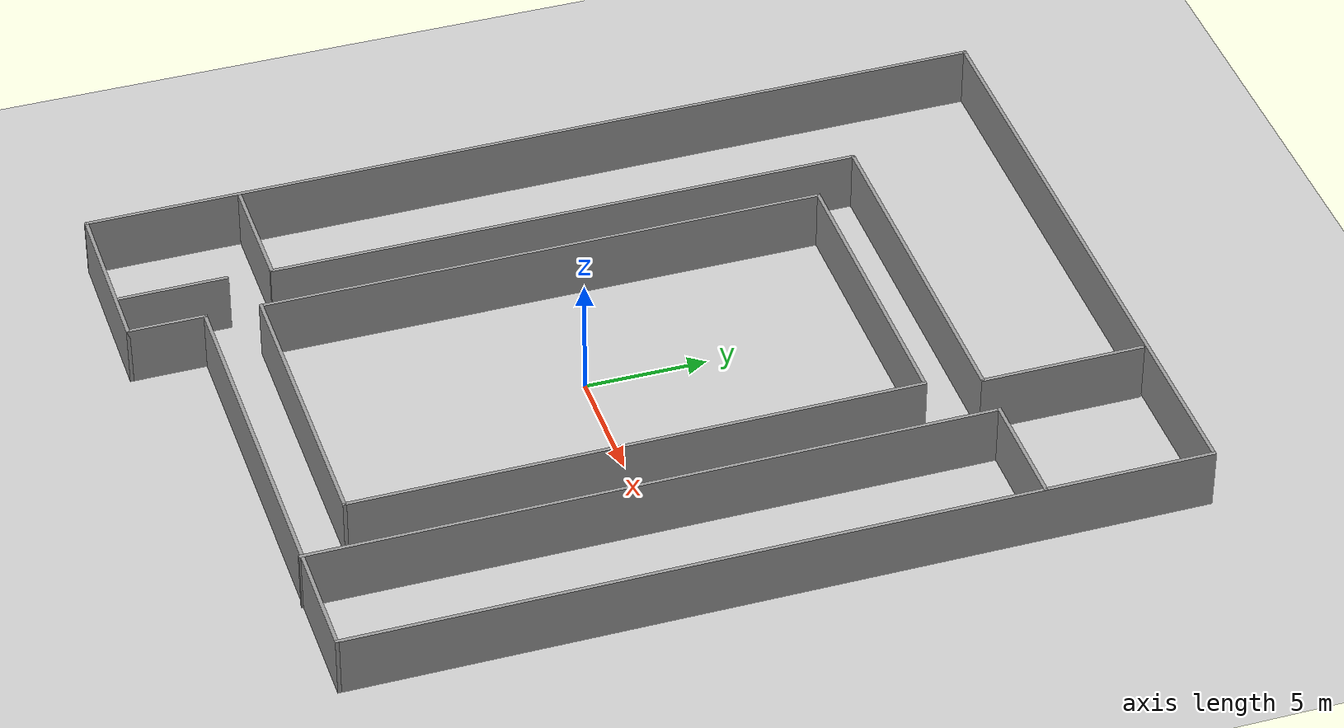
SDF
<sdf version="1.7">
 <world name="default">
  <light name="sun" type="directional">
   <pose>0 0 10 0 -0 0</pose>
   <diffuse>0.8 0.8 0.8 1</diffuse>
   <specular>0.2 0.2 0.2 1</specular>
   <attenuation>
    <range>1000</range>
    <constant>0.9</constant>
    <linear>0.01</linear>
    <quadratic>0.001</quadratic>
   </attenuation>
   <direction>-0.5 0.1 -0.9</direction>
   <spot><inner_angle>0</inner_angle><outer_angle>0</outer_angle><falloff>0</falloff></spot>
  </light>
  <model name="ground_plane">
   <static>1</static>
   <link name="link">
    <collision name="collision">
     <geometry><plane><normal>0 0 1</normal><size>100 100</size></plane></geometry>
     <surface>
      <contact><collide_bitmask>65535</collide_bitmask></contact>
      <friction><ode><mu>100</mu><mu2>50</mu2></ode></friction>
     </surface>
    </collision>
    <visual name="visual">
     <cast_shadows>0</cast_shadows>
     <geometry><plane><normal>0 0 1</normal><size>100 100</size></plane></geometry>
     <material>
      <script><uri>file://media/materials/scripts/gazebo.material</uri><name>Gazebo/Grey</name></script>
     </material>
    </visual>
   </link>
  </model>
  <gravity>0 0 -9.8</gravity>
  <magnetic_field>6e-06 2.3e-05 -4.2e-05</magnetic_field>
  <atmosphere type="adiabatic"/>
  <physics name="default_physics" default="0" type="ode">
   <max_step_size>0.001</max_step_size>
   <real_time_factor>1</real_time_factor>
   <real_time_update_rate>1000</real_time_update_rate>
  </physics>
  <scene><ambient>0.4 0.4 0.4 1</ambient><background>0.7 0.7 0.7 1</background><shadows>1</shadows></scene>
  <audio><device>default</device></audio>
  <spherical_coordinates>
   <surface_model>EARTH_WGS84</surface_model>
   <latitude_deg>0</latitude_deg>
   <longitude_deg>0</longitude_deg>
   <elevation>0</elevation>
   <heading_deg>0</heading_deg>
  </spherical_coordinates>
  <model name="GGB_lab">
   <pose>0.370049 1.8943 0 0 -0 0</pose>
   <link name="Wall_0">
    <collision name="Wall_0_Collision">
     <geometry><box><size>27 0.15 2.5</size></box></geometry>
     <pose>0 0 1.25 0 -0 0</pose>
    </collision>
    <visual name="Wall_0_Visual">
     <pose>0 0 1.25 0 -0 0</pose>
     <geometry><box><size>27 0.15 2.5</size></box></geometry>
     <material>
      <script><uri>file://media/materials/scripts/gazebo.material</uri><name>Gazebo/Grey</name></script>
      <ambient>1 1 1 1</ambient>
     </material>
     <meta><layer>0</layer></meta>
    </visual>
    <pose>0.000153 18.725 0 0 -0 0</pose>
   </link>
   <link name="Wall_1">
    <collision name="Wall_1_Collision">
     <geometry><box><size>34.5 0.15 2.5</size></box></geometry>
     <pose>0 0 1.25 0 -0 0</pose>
    </collision>
    <visual name="Wall_1_Visual">
     <pose>0 0 1.25 0 -0 0</pose>
     <geometry><box><size>34.5 0.15 2.5</size></box></geometry>
     <material>
      <script><uri>file://media/materials/scripts/gazebo.material</uri><name>Gazebo/Grey</name></script>
      <ambient>1 1 1 1</ambient>
     </material>
     <meta><layer>0</layer></meta>
    </visual>
    <pose>13.4251 1.55001 0 0 -0 -1.5708</pose>
   </link>
   <link name="Wall_10">
    <collision name="Wall_10_Collision">
     <geometry><box><size>15 0.15 2.5</size></box></geometry>
     <pose>0 0 1.25 0 -0 0</pose>
    </collision>
    <visual name="Wall_10_Visual">
     <pose>0 0 1.25 0 -0 0</pose>
     <geometry><box><size>15 0.15 2.5</size></box></geometry>
     <material>
      <script><uri>file://media/materials/scripts/gazebo.material</uri><name>Gazebo/Grey</name></script>
      <ambient>1 1 1 1</ambient>
     </material>
     <meta><layer>0</layer></meta>
    </visual>
    <pose>-0.683052 11.9115 0 0 -0 3.14159</pose>
   </link>
   <link name="Wall_11">
    <collision name="Wall_11_Collision">
     <geometry><box><size>24.5 0.15 2.5</size></box></geometry>
     <pose>0 0 1.25 0 -0 0</pose>
    </collision>
    <visual name="Wall_11_Visual">
     <pose>0 0 1.25 0 -0 0</pose>
     <geometry><box><size>24.5 0.15 2.5</size></box></geometry>
     <material>
      <script><uri>file://media/materials/scripts/gazebo.material</uri><name>Gazebo/Grey</name></script>
      <ambient>1 1 1 1</ambient>
     </material>
     <meta><layer>0</layer></meta>
    </visual>
    <pose>-8.10805 -0.263517 0 0 -0 -1.5708</pose>
   </link>
   <link name="Wall_12">
    <collision name="Wall_12_Collision">
     <geometry><box><size>5.25 0.15 2.5</size></box></geometry>
     <pose>0 0 1.25 0 -0 0</pose>
    </collision>
    <visual name="Wall_12_Visual">
     <pose>0 0 1.25 0 -0 0</pose>
     <geometry><box><size>5.25 0.15 2.5</size></box></geometry>
     <material>
      <script><uri>file://media/materials/scripts/gazebo.material</uri><name>Gazebo/Grey</name></script>
      <ambient>1 1 1 1</ambient>
     </material>
     <meta><layer>0</layer></meta>
    </visual>
    <pose>-10.6581 -12.4385 0 0 -0 3.14159</pose>
   </link>
   <link name="Wall_14">
    <collision name="Wall_14_Collision">
     <geometry><box><size>4.5 0.15 2.5</size></box></geometry>
     <pose>0 0 1.25 0 -0 0</pose>
    </collision>
    <visual name="Wall_14_Visual">
     <pose>0 0 1.25 0 -0 0</pose>
     <geometry><box><size>4.5 0.15 2.5</size></box></geometry>
     <material>
      <script><uri>file://media/materials/scripts/gazebo.material</uri><name>Gazebo/Grey</name></script>
      <ambient>1 1 1 1</ambient>
     </material>
     <meta><layer>0</layer></meta>
    </visual>
    <pose>-8.22346 -16.4226 0 0 -0 -1.5708</pose>
   </link>
   <link name="Wall_16">
    <collision name="Wall_16_Collision">
     <geometry><box><size>6.75 0.15 2.5</size></box></geometry>
     <pose>0 0 1.25 0 -0 0</pose>
    </collision>
    <visual name="Wall_16_Visual">
     <pose>0 0 1.25 0 -0 0</pose>
     <geometry><box><size>6.75 0.15 2.5</size></box></geometry>
     <material>
      <script><uri>file://media/materials/scripts/gazebo.material</uri><name>Gazebo/Grey</name></script>
      <ambient>1 1 1 1</ambient>
     </material>
     <meta><layer>0</layer></meta>
    </visual>
    <pose>6.74195 15.2115 0 0 -0 1.5708</pose>
   </link>
   <link name="Wall_18">
    <collision name="Wall_18_Collision">
     <geometry><box><size>12.5 0.15 2.5</size></box></geometry>
     <pose>0 0 1.25 0 -0 0</pose>
    </collision>
    <visual name="Wall_18_Visual">
     <pose>0 0 1.25 0 -0 0</pose>
     <geometry><box><size>12.5 0.15 2.5</size></box></geometry>
     <material>
      <script><uri>file://media/materials/scripts/gazebo.material</uri><name>Gazebo/Grey</name></script>
      <ambient>1 1 1 1</ambient>
     </material>
     <meta><layer>0</layer></meta>
    </visual>
    <pose>0.050346 9.72142 0 0 -0 0</pose>
   </link>
   <link name="Wall_19">
    <collision name="Wall_19_Collision">
     <geometry><box><size>23.25 0.15 2.5</size></box></geometry>
     <pose>0 0 1.25 0 -0 0</pose>
    </collision>
    <visual name="Wall_19_Visual">
     <pose>0 0 1.25 0 -0 0</pose>
     <geometry><box><size>23.25 0.15 2.5</size></box></geometry>
     <material>
      <script><uri>file://media/materials/scripts/gazebo.material</uri><name>Gazebo/Grey</name></script>
      <ambient>1 1 1 1</ambient>
     </material>
     <meta><layer>0</layer></meta>
    </visual>
    <pose>6.22535 -1.82858 0 0 -0 -1.5708</pose>
   </link>
   <link name="Wall_2">
    <collision name="Wall_2_Collision">
     <geometry><box><size>19.75 0.15 2.5</size></box></geometry>
     <pose>0 0 1.25 0 -0 0</pose>
    </collision>
    <visual name="Wall_2_Visual">
     <pose>0 0 1.25 0 -0 0</pose>
     <geometry><box><size>19.75 0.15 2.5</size></box></geometry>
     <material>
      <script><uri>file://media/materials/scripts/gazebo.material</uri><name>Gazebo/Grey</name></script>
      <ambient>1 1 1 1</ambient>
     </material>
     <meta><layer>0</layer></meta>
    </visual>
    <pose>3.62515 -15.625 0 0 -0 3.14159</pose>
   </link>
   <link name="Wall_20">
    <collision name="Wall_20_Collision">
     <geometry><box><size>12.5 0.15 2.5</size></box></geometry>
     <pose>0 0 1.25 0 -0 0</pose>
    </collision>
    <visual name="Wall_20_Visual">
     <pose>0 0 1.25 0 -0 0</pose>
     <geometry><box><size>12.5 0.15 2.5</size></box></geometry>
     <material>
      <script><uri>file://media/materials/scripts/gazebo.material</uri><name>Gazebo/Grey</name></script>
      <ambient>1 1 1 1</ambient>
     </material>
     <meta><layer>0</layer></meta>
    </visual>
    <pose>0.050346 -13.3786 0 0 -0 3.14159</pose>
   </link>
   <link name="Wall_21">
    <collision name="Wall_21_Collision">
     <geometry><box><size>23.25 0.15 2.5</size></box></geometry>
     <pose>0 0 1.25 0 -0 0</pose>
    </collision>
    <visual name="Wall_21_Visual">
     <pose>0 0 1.25 0 -0 0</pose>
     <geometry><box><size>23.25 0.15 2.5</size></box></geometry>
     <material>
      <script><uri>file://media/materials/scripts/gazebo.material</uri><name>Gazebo/Grey</name></script>
      <ambient>1 1 1 1</ambient>
     </material>
     <meta><layer>0</layer></meta>
    </visual>
    <pose>-6.12465 -1.82858 0 0 -0 1.5708</pose>
   </link>
   <link name="Wall_23">
    <collision name="Wall_23_Collision">
     <geometry><box><size>27.75 0.15 2.5</size></box></geometry>
     <pose>0 0 1.25 0 -0 0</pose>
    </collision>
    <visual name="Wall_23_Visual">
     <pose>0 0 1.25 0 -0 0</pose>
     <geometry><box><size>27.75 0.15 2.5</size></box></geometry>
     <material>
      <script><uri>file://media/materials/scripts/gazebo.material</uri><name>Gazebo/Grey</name></script>
      <ambient>1 1 1 1</ambient>
     </material>
     <meta><layer>0</layer></meta>
    </visual>
    <pose>8.55338 -1.88852 0 0 -0 -1.5708</pose>
   </link>
   <link name="Wall_3">
    <collision name="Wall_3_Collision">
     <geometry><box><size>3.25 0.15 2.5</size></box></geometry>
     <pose>0 0 1.25 0 -0 0</pose>
    </collision>
    <visual name="Wall_3_Visual">
     <pose>0 0 1.25 0 -0 0</pose>
     <geometry><box><size>3.25 0.15 2.5</size></box></geometry>
     <material>
      <script><uri>file://media/materials/scripts/gazebo.material</uri><name>Gazebo/Grey</name></script>
      <ambient>1 1 1 1</ambient>
     </material>
     <meta><layer>0</layer></meta>
    </visual>
    <pose>-6.17485 -17.175 0 0 -0 -1.5708</pose>
   </link>
   <link name="Wall_4">
    <collision name="Wall_4_Collision">
     <geometry><box><size>7.25 0.15 2.5</size></box></geometry>
     <pose>0 0 1.25 0 -0 0</pose>
    </collision>
    <visual name="Wall_4_Visual">
     <pose>0 0 1.25 0 -0 0</pose>
     <geometry><box><size>7.25 0.15 2.5</size></box></geometry>
     <material>
      <script><uri>file://media/materials/scripts/gazebo.material</uri><name>Gazebo/Grey</name></script>
      <ambient>1 1 1 1</ambient>
     </material>
     <meta><layer>0</layer></meta>
    </visual>
    <pose>-9.72485 -18.725 0 0 -0 3.14159</pose>
   </link>
   <link name="Wall_5">
    <collision name="Wall_5_Collision">
     <geometry><box><size>37.6003 0.15 2.5</size></box></geometry>
     <pose>0 0 1.25 0 -0 0</pose>
    </collision>
    <visual name="Wall_5_Visual">
     <pose>0 0 1.25 0 -0 0</pose>
     <geometry><box><size>37.6003 0.15 2.5</size></box></geometry>
     <material>
      <script><uri>file://media/materials/scripts/gazebo.material</uri><name>Gazebo/Grey</name></script>
      <ambient>1 1 1 1</ambient>
     </material>
     <meta><layer>0</layer></meta>
    </visual>
    <pose>-13.3498 2e-06 0 0 -0 1.5748</pose>
   </link>
   <link name="Wall_7">
    <collision name="Wall_7_Collision">
     <geometry><box><size>5 0.15 2.5</size></box></geometry>
     <pose>0 0 1.25 0 -0 0</pose>
    </collision>
    <visual name="Wall_7_Visual">
     <pose>0 0 1.25 0 -0 0</pose>
     <geometry><box><size>5 0.15 2.5</size></box></geometry>
     <material>
      <script><uri>file://media/materials/scripts/gazebo.material</uri><name>Gazebo/Grey</name></script>
      <ambient>1 1 1 1</ambient>
     </material>
     <meta><layer>0</layer></meta>
    </visual>
    <pose>10.9784 11.9115 0 0 -0 3.14159</pose>
   </link>
   <static>1</static>
  </model>
  <model name="agent3">
   <link name="link_0">
    <inertial>
     <mass>1</mass>
     <inertia><ixx>0</ixx><ixy>0</ixy><ixz>0</ixz><iyy>0</iyy><iyz>0</iyz><izz>0</izz></inertia>
    </inertial>
    <visual name="visual">
     <geometry><cylinder><radius>0.2</radius><length>0.4</length></cylinder></geometry>
     <material>
      <lighting>1</lighting>
      <script><uri>file://media/materials/scripts/gazebo.material</uri><name>Gazebo/Grey</name></script>
     </material>
    </visual>
    <collision name="collision">
     <geometry><cylinder><radius>0.2</radius><length>0.4</length></cylinder></geometry>
     <surface>
      <friction>
       <ode><mu>0</mu><mu2>1</mu2><fdir1>0 0 0</fdir1><slip1>0</slip1><slip2>0</slip2></ode>
       <torsional>
        <coefficient>1</coefficient>
        <patch_radius>0</patch_radius>
        <surface_radius>0</surface_radius>
        <use_patch_radius>1</use_patch_radius>
        <ode><slip>0</slip></ode>
       </torsional>
      </friction>
      <bounce><restitution_coefficient>0</restitution_coefficient><threshold>1e+06</threshold></bounce>
      <contact>
       <collide_without_contact>0</collide_without_contact>
       <collide_without_contact_bitmask>1</collide_without_contact_bitmask>
       <collide_bitmask>1</collide_bitmask>
       <ode>
        <soft_cfm>0</soft_cfm>
        <soft_erp>0.2</soft_erp>
        <kp>1e+13</kp>
        <kd>1</kd>
        <max_vel>0.01</max_vel>
        <min_depth>0</min_depth>
       </ode>
       <bullet>
        <split_impulse>1</split_impulse>
        <split_impulse_penetration_threshold>-0.01</split_impulse_penetration_threshold>
        <soft_cfm>0</soft_cfm>
        <soft_erp>0.2</soft_erp>
        <kp>1e+13</kp>
        <kd>1</kd>
       </bullet>
      </contact>
     </surface>
    </collision>
   </link>
   <static>0</static>
   <plugin name="multi_obs" filename="libmulti_obs.so"/>
   <pose>8 -3 0.19999 -0 -0 -0</pose>
  </model>
  <model name="agent2">
   <link name="link_0">
    <inertial>
     <mass>1</mass>
     <inertia><ixx>0</ixx><ixy>0</ixy><ixz>0</ixz><iyy>0</iyy><iyz>0</iyz><izz>0</izz></inertia>
    </inertial>
    <visual name="visual">
     <geometry><cylinder><radius>0.2</radius><length>0.4</length></cylinder></geometry>
     <material>
      <lighting>1</lighting>
      <script><uri>file://media/materials/scripts/gazebo.material</uri><name>Gazebo/Grey</name></script>
     </material>
    </visual>
    <collision name="collision">
     <geometry><cylinder><radius>0.2</radius><length>0.4</length></cylinder></geometry>
     <surface>
      <friction>
       <ode><mu>0</mu><mu2>1</mu2><fdir1>0 0 0</fdir1><slip1>0</slip1><slip2>0</slip2></ode>
       <torsional>
        <coefficient>1</coefficient>
        <patch_radius>0</patch_radius>
        <surface_radius>0</surface_radius>
        <use_patch_radius>1</use_patch_radius>
        <ode><slip>0</slip></ode>
       </torsional>
      </friction>
      <bounce><restitution_coefficient>0</restitution_coefficient><threshold>1e+06</threshold></bounce>
      <contact>
       <collide_without_contact>0</collide_without_contact>
       <collide_without_contact_bitmask>1</collide_without_contact_bitmask>
       <collide_bitmask>1</collide_bitmask>
       <ode>
        <soft_cfm>0</soft_cfm>
        <soft_erp>0.2</soft_erp>
        <kp>1e+13</kp>
        <kd>1</kd>
        <max_vel>0.01</max_vel>
        <min_depth>0</min_depth>
       </ode>
       <bullet>
        <split_impulse>1</split_impulse>
        <split_impulse_penetration_threshold>-0.01</split_impulse_penetration_threshold>
        <soft_cfm>0</soft_cfm>
        <soft_erp>0.2</soft_erp>
        <kp>1e+13</kp>
        <kd>1</kd>
       </bullet>
      </contact>
     </surface>
    </collision>
   </link>
   <static>0</static>
   <plugin name="multi_obs" filename="libmulti_obs.so"/>
   <pose>8 -4 0.19999 -0 -0 -0</pose>
  </model>
  <model name="agent4">
   <link name="link_0">
    <inertial>
     <mass>1</mass>
     <inertia><ixx>0</ixx><ixy>0</ixy><ixz>0</ixz><iyy>0</iyy><iyz>0</iyz><izz>0</izz></inertia>
    </inertial>
    <visual name="visual">
     <geometry><cylinder><radius>0.2</radius><length>0.4</length></cylinder></geometry>
     <material>
      <lighting>1</lighting>
      <script><uri>file://media/materials/scripts/gazebo.material</uri><name>Gazebo/Grey</name></script>
     </material>
    </visual>
    <collision name="collision">
     <geometry><cylinder><radius>0.2</radius><length>0.4</length></cylinder></geometry>
     <surface>
      <friction>
       <ode><mu>0</mu><mu2>1</mu2><fdir1>0 0 0</fdir1><slip1>0</slip1><slip2>0</slip2></ode>
       <torsional>
        <coefficient>1</coefficient>
        <patch_radius>0</patch_radius>
        <surface_radius>0</surface_radius>
        <use_patch_radius>1</use_patch_radius>
        <ode><slip>0</slip></ode>
       </torsional>
      </friction>
      <bounce><restitution_coefficient>0</restitution_coefficient><threshold>1e+06</threshold></bounce>
      <contact>
       <collide_without_contact>0</collide_without_contact>
       <collide_without_contact_bitmask>1</collide_without_contact_bitmask>
       <collide_bitmask>1</collide_bitmask>
       <ode>
        <soft_cfm>0</soft_cfm>
        <soft_erp>0.2</soft_erp>
        <kp>1e+13</kp>
        <kd>1</kd>
        <max_vel>0.01</max_vel>
        <min_depth>0</min_depth>
       </ode>
       <bullet>
        <split_impulse>1</split_impulse>
        <split_impulse_penetration_threshold>-0.01</split_impulse_penetration_threshold>
        <soft_cfm>0</soft_cfm>
        <soft_erp>0.2</soft_erp>
        <kp>1e+13</kp>
        <kd>1</kd>
       </bullet>
      </contact>
     </surface>
    </collision>
   </link>
   <static>0</static>
   <plugin name="multi_obs" filename="libmulti_obs.so"/>
   <pose>8 -2 0.19999 -0 -0 -0</pose>
  </model>
  <model name="agent1">
   <link name="link_0">
    <inertial>
     <mass>1</mass>
     <inertia><ixx>0</ixx><ixy>0</ixy><ixz>0</ixz><iyy>0</iyy><iyz>0</iyz><izz>0</izz></inertia>
    </inertial>
    <visual name="visual">
     <geometry><cylinder><radius>0.2</radius><length>0.4</length></cylinder></geometry>
     <material>
      <lighting>1</lighting>
      <script><uri>file://media/materials/scripts/gazebo.material</uri><name>Gazebo/Grey</name></script>
     </material>
    </visual>
    <collision name="collision">
     <geometry><cylinder><radius>0.2</radius><length>0.4</length></cylinder></geometry>
     <surface>
      <friction>
       <ode><mu>0</mu><mu2>1</mu2><fdir1>0 0 0</fdir1><slip1>0</slip1><slip2>0</slip2></ode>
       <torsional>
        <coefficient>1</coefficient>
        <patch_radius>0</patch_radius>
        <surface_radius>0</surface_radius>
        <use_patch_radius>1</use_patch_radius>
        <ode><slip>0</slip></ode>
       </torsional>
      </friction>
      <bounce><restitution_coefficient>0</restitution_coefficient><threshold>1e+06</threshold></bounce>
      <contact>
       <collide_without_contact>0</collide_without_contact>
       <collide_without_contact_bitmask>1</collide_without_contact_bitmask>
       <collide_bitmask>1</collide_bitmask>
       <ode>
        <soft_cfm>0</soft_cfm>
        <soft_erp>0.2</soft_erp>
        <kp>1e+13</kp>
        <kd>1</kd>
        <max_vel>0.01</max_vel>
        <min_depth>0</min_depth>
       </ode>
       <bullet>
        <split_impulse>1</split_impulse>
        <split_impulse_penetration_threshold>-0.01</split_impulse_penetration_threshold>
        <soft_cfm>0</soft_cfm>
        <soft_erp>0.2</soft_erp>
        <kp>1e+13</kp>
        <kd>1</kd>
       </bullet>
      </contact>
     </surface>
    </collision>
   </link>
   <static>0</static>
   <plugin name="multi_obs" filename="libmulti_obs.so"/>
   <pose>8 -5 0.19999 -0 -0 -0</pose>
  </model>
  <model name="agent5">
   <link name="link_0">
    <inertial>
     <mass>1</mass>
     <inertia><ixx>0</ixx><ixy>0</ixy><ixz>0</ixz><iyy>0</iyy><iyz>0</iyz><izz>0</izz></inertia>
    </inertial>
    <visual name="visual">
     <geometry><cylinder><radius>0.2</radius><length>0.4</length></cylinder></geometry>
     <material>
      <lighting>1</lighting>
      <script><uri>file://media/materials/scripts/gazebo.material</uri><name>Gazebo/Grey</name></script>
     </material>
    </visual>
    <collision name="collision">
     <geometry><cylinder><radius>0.2</radius><length>0.4</length></cylinder></geometry>
     <surface>
      <friction>
       <ode><mu>0</mu><mu2>1</mu2><fdir1>0 0 0</fdir1><slip1>0</slip1><slip2>0</slip2></ode>
       <torsional>
        <coefficient>1</coefficient>
        <patch_radius>0</patch_radius>
        <surface_radius>0</surface_radius>
        <use_patch_radius>1</use_patch_radius>
        <ode><slip>0</slip></ode>
       </torsional>
      </friction>
      <bounce><restitution_coefficient>0</restitution_coefficient><threshold>1e+06</threshold></bounce>
      <contact>
       <collide_without_contact>0</collide_without_contact>
       <collide_without_contact_bitmask>1</collide_without_contact_bitmask>
       <collide_bitmask>1</collide_bitmask>
       <ode>
        <soft_cfm>0</soft_cfm>
        <soft_erp>0.2</soft_erp>
        <kp>1e+13</kp>
        <kd>1</kd>
        <max_vel>0.01</max_vel>
        <min_depth>0</min_depth>
       </ode>
       <bullet>
        <split_impulse>1</split_impulse>
        <split_impulse_penetration_threshold>-0.01</split_impulse_penetration_threshold>
        <soft_cfm>0</soft_cfm>
        <soft_erp>0.2</soft_erp>
        <kp>1e+13</kp>
        <kd>1</kd>
       </bullet>
      </contact>
     </surface>
    </collision>
   </link>
   <static>0</static>
   <plugin name="multi_obs" filename="libmulti_obs.so"/>
   <pose>8 -1 0.19999 -0 -0 -0</pose>
  </model>
  <model name="agent6">
   <link name="link_0">
    <inertial>
     <mass>1</mass>
     <inertia><ixx>0</ixx><ixy>0</ixy><ixz>0</ixz><iyy>0</iyy><iyz>0</iyz><izz>0</izz></inertia>
    </inertial>
    <visual name="visual">
     <geometry><cylinder><radius>0.2</radius><length>0.4</length></cylinder></geometry>
     <material>
      <lighting>1</lighting>
      <script><uri>file://media/materials/scripts/gazebo.material</uri><name>Gazebo/Grey</name></script>
     </material>
    </visual>
    <collision name="collision">
     <geometry><cylinder><radius>0.2</radius><length>0.4</length></cylinder></geometry>
     <surface>
      <friction>
       <ode><mu>0</mu><mu2>1</mu2><fdir1>0 0 0</fdir1><slip1>0</slip1><slip2>0</slip2></ode>
       <torsional>
        <coefficient>1</coefficient>
        <patch_radius>0</patch_radius>
        <surface_radius>0</surface_radius>
        <use_patch_radius>1</use_patch_radius>
        <ode><slip>0</slip></ode>
       </torsional>
      </friction>
      <bounce><restitution_coefficient>0</restitution_coefficient><threshold>1e+06</threshold></bounce>
      <contact>
       <collide_without_contact>0</collide_without_contact>
       <collide_without_contact_bitmask>1</collide_without_contact_bitmask>
       <collide_bitmask>1</collide_bitmask>
       <ode>
        <soft_cfm>0</soft_cfm>
        <soft_erp>0.2</soft_erp>
        <kp>1e+13</kp>
        <kd>1</kd>
        <max_vel>0.01</max_vel>
        <min_depth>0</min_depth>
       </ode>
       <bullet>
        <split_impulse>1</split_impulse>
        <split_impulse_penetration_threshold>-0.01</split_impulse_penetration_threshold>
        <soft_cfm>0</soft_cfm>
        <soft_erp>0.2</soft_erp>
        <kp>1e+13</kp>
        <kd>1</kd>
       </bullet>
      </contact>
     </surface>
    </collision>
   </link>
   <static>0</static>
   <plugin name="multi_obs" filename="libmulti_obs.so"/>
   <pose>8 0 0.19999 -0 -0 -0</pose>
  </model>
 </world>
</sdf>
